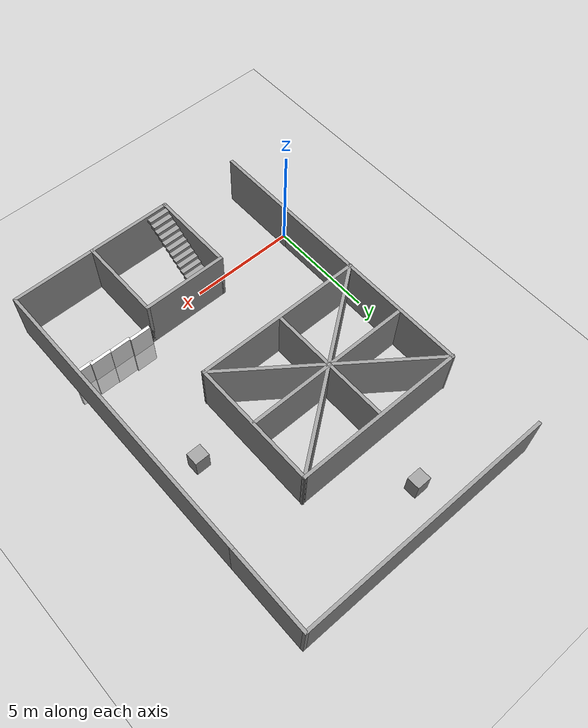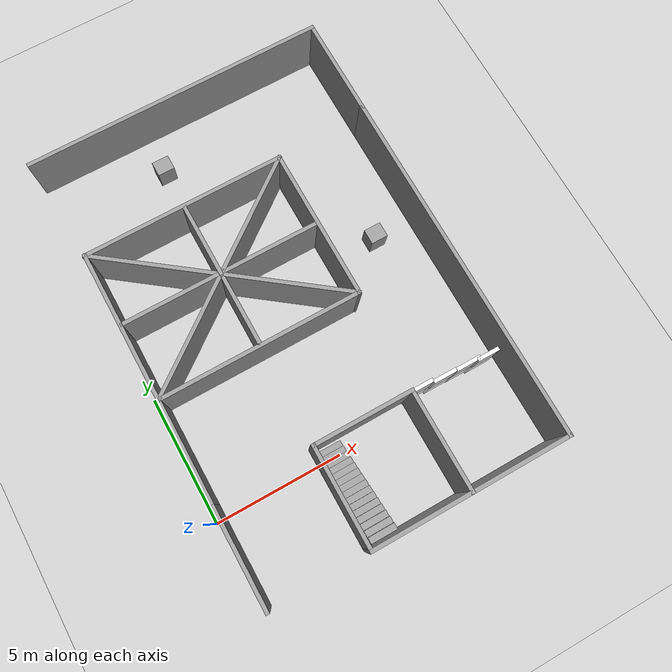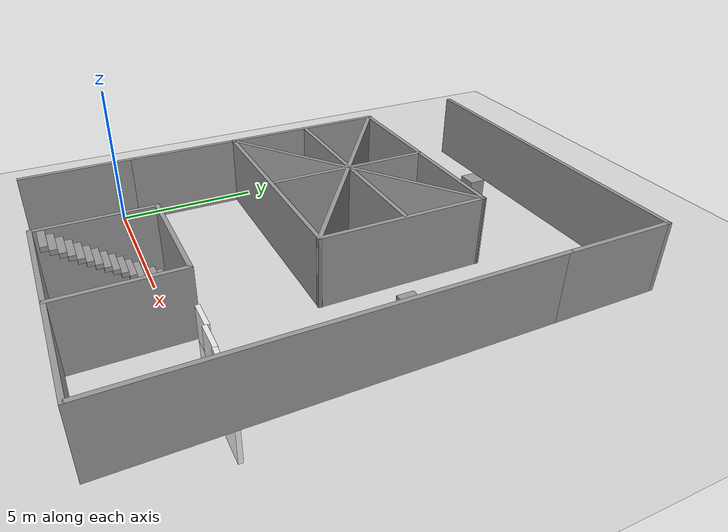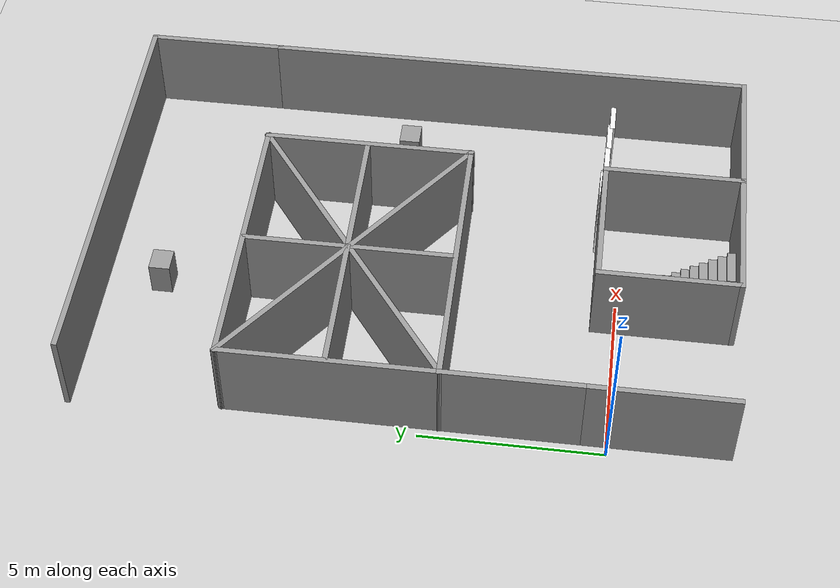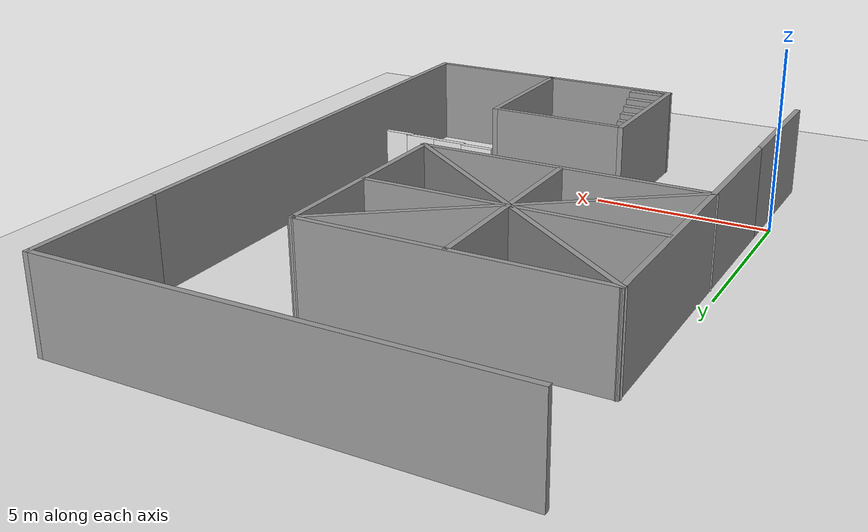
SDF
<sdf version="1.6">
 <world name="default">
  <light name="sun" type="directional">
   <pose>0 0 10 0 -0 0</pose>
   <diffuse>0.8 0.8 0.8 1</diffuse>
   <specular>0.1 0.1 0.1 1</specular>
   <attenuation>
    <range>1000</range>
    <constant>0.9</constant>
    <linear>0.01</linear>
    <quadratic>0.001</quadratic>
   </attenuation>
   <direction>-0.5 0.5 -1</direction>
  </light>
  <model name="ground_plane">
   <static>1</static>
   <link name="link">
    <collision name="collision">
     <geometry><plane><normal>0 0 1</normal><size>100 100</size></plane></geometry>
     <surface><friction><ode><mu>100</mu><mu2>50</mu2></ode></friction></surface>
    </collision>
    <visual name="visual">
     <cast_shadows>0</cast_shadows>
     <geometry><plane><normal>0 0 1</normal><size>100 100</size></plane></geometry>
     <material>
      <script><uri>file://media/materials/scripts/gazebo.material</uri><name>Gazebo/Grey</name></script>
     </material>
    </visual>
   </link>
  </model>
  <gravity>0 0 -9.8</gravity>
  <magnetic_field>6e-06 2.3e-05 -4.2e-05</magnetic_field>
  <atmosphere type="adiabatic"/>
  <physics name="default_physics" default="0" type="ode">
   <max_step_size>0.001</max_step_size>
   <real_time_factor>1</real_time_factor>
   <real_time_update_rate>1000</real_time_update_rate>
  </physics>
  <scene><ambient>0.4 0.4 0.4 1</ambient><background>0.7 0.7 0.7 1</background><shadows>1</shadows></scene>
  <spherical_coordinates>
   <surface_model>EARTH_WGS84</surface_model>
   <latitude_deg>0</latitude_deg>
   <longitude_deg>0</longitude_deg>
   <elevation>0</elevation>
   <heading_deg>0</heading_deg>
  </spherical_coordinates>
  <model name="maze_01">
   <pose>5.935 5.61 0 0 -0 0</pose>
   <link name="Stairs_0">
    <visual name="Stairs_0_Visual_0">
     <pose>-1.18202 -5.27807 0.083333 0 -0 0</pose>
     <geometry><box><size>1 0.233333 0.166667</size></box></geometry>
     <material>
      <script><uri>file://media/materials/scripts/gazebo.material</uri><name>Gazebo/Grey</name></script>
      <ambient>1 1 1 1</ambient>
     </material>
    </visual>
    <collision name="Stairs_0_Collision_0">
     <geometry><box><size>1 0.233333 0.166667</size></box></geometry>
     <pose>-1.18202 -5.27807 0.083333 0 -0 0</pose>
    </collision>
    <visual name="Stairs_0_Visual_1">
     <pose>-1.18202 -5.51141 0.25 0 -0 0</pose>
     <geometry><box><size>1 0.233333 0.166667</size></box></geometry>
     <material>
      <script><uri>file://media/materials/scripts/gazebo.material</uri><name>Gazebo/Grey</name></script>
      <ambient>1 1 1 1</ambient>
     </material>
    </visual>
    <collision name="Stairs_0_Collision_1">
     <geometry><box><size>1 0.233333 0.166667</size></box></geometry>
     <pose>-1.18202 -5.51141 0.25 0 -0 0</pose>
    </collision>
    <visual name="Stairs_0_Visual_2">
     <pose>-1.18202 -5.74474 0.416667 0 -0 0</pose>
     <geometry><box><size>1 0.233333 0.166667</size></box></geometry>
     <material>
      <script><uri>file://media/materials/scripts/gazebo.material</uri><name>Gazebo/Grey</name></script>
      <ambient>1 1 1 1</ambient>
     </material>
    </visual>
    <collision name="Stairs_0_Collision_2">
     <geometry><box><size>1 0.233333 0.166667</size></box></geometry>
     <pose>-1.18202 -5.74474 0.416667 0 -0 0</pose>
    </collision>
    <visual name="Stairs_0_Visual_3">
     <pose>-1.18202 -5.97807 0.583333 0 -0 0</pose>
     <geometry><box><size>1 0.233333 0.166667</size></box></geometry>
     <material>
      <script><uri>file://media/materials/scripts/gazebo.material</uri><name>Gazebo/Grey</name></script>
      <ambient>1 1 1 1</ambient>
     </material>
    </visual>
    <collision name="Stairs_0_Collision_3">
     <geometry><box><size>1 0.233333 0.166667</size></box></geometry>
     <pose>-1.18202 -5.97807 0.583333 0 -0 0</pose>
    </collision>
    <visual name="Stairs_0_Visual_4">
     <pose>-1.18202 -6.21141 0.75 0 -0 0</pose>
     <geometry><box><size>1 0.233333 0.166667</size></box></geometry>
     <material>
      <script><uri>file://media/materials/scripts/gazebo.material</uri><name>Gazebo/Grey</name></script>
      <ambient>1 1 1 1</ambient>
     </material>
    </visual>
    <collision name="Stairs_0_Collision_4">
     <geometry><box><size>1 0.233333 0.166667</size></box></geometry>
     <pose>-1.18202 -6.21141 0.75 0 -0 0</pose>
    </collision>
    <visual name="Stairs_0_Visual_5">
     <pose>-1.18202 -6.44474 0.916667 0 -0 0</pose>
     <geometry><box><size>1 0.233333 0.166667</size></box></geometry>
     <material>
      <script><uri>file://media/materials/scripts/gazebo.material</uri><name>Gazebo/Grey</name></script>
      <ambient>1 1 1 1</ambient>
     </material>
    </visual>
    <collision name="Stairs_0_Collision_5">
     <geometry><box><size>1 0.233333 0.166667</size></box></geometry>
     <pose>-1.18202 -6.44474 0.916667 0 -0 0</pose>
    </collision>
    <visual name="Stairs_0_Visual_6">
     <pose>-1.18202 -6.67807 1.08333 0 -0 0</pose>
     <geometry><box><size>1 0.233333 0.166667</size></box></geometry>
     <material>
      <script><uri>file://media/materials/scripts/gazebo.material</uri><name>Gazebo/Grey</name></script>
      <ambient>1 1 1 1</ambient>
     </material>
    </visual>
    <collision name="Stairs_0_Collision_6">
     <geometry><box><size>1 0.233333 0.166667</size></box></geometry>
     <pose>-1.18202 -6.67807 1.08333 0 -0 0</pose>
    </collision>
    <visual name="Stairs_0_Visual_7">
     <pose>-1.18202 -6.91141 1.25 0 -0 0</pose>
     <geometry><box><size>1 0.233333 0.166667</size></box></geometry>
     <material>
      <script><uri>file://media/materials/scripts/gazebo.material</uri><name>Gazebo/Grey</name></script>
      <ambient>1 1 1 1</ambient>
     </material>
    </visual>
    <collision name="Stairs_0_Collision_7">
     <geometry><box><size>1 0.233333 0.166667</size></box></geometry>
     <pose>-1.18202 -6.91141 1.25 0 -0 0</pose>
    </collision>
    <visual name="Stairs_0_Visual_8">
     <pose>-1.18202 -7.14474 1.41667 0 -0 0</pose>
     <geometry><box><size>1 0.233333 0.166667</size></box></geometry>
     <material>
      <script><uri>file://media/materials/scripts/gazebo.material</uri><name>Gazebo/Grey</name></script>
      <ambient>1 1 1 1</ambient>
     </material>
    </visual>
    <collision name="Stairs_0_Collision_8">
     <geometry><box><size>1 0.233333 0.166667</size></box></geometry>
     <pose>-1.18202 -7.14474 1.41667 0 -0 0</pose>
    </collision>
    <visual name="Stairs_0_Visual_9">
     <pose>-1.18202 -7.37807 1.58333 0 -0 0</pose>
     <geometry><box><size>1 0.233333 0.166667</size></box></geometry>
     <material>
      <script><uri>file://media/materials/scripts/gazebo.material</uri><name>Gazebo/Grey</name></script>
      <ambient>1 1 1 1</ambient>
     </material>
    </visual>
    <collision name="Stairs_0_Collision_9">
     <geometry><box><size>1 0.233333 0.166667</size></box></geometry>
     <pose>-1.18202 -7.37807 1.58333 0 -0 0</pose>
    </collision>
    <visual name="Stairs_0_Visual_10">
     <pose>-1.18202 -7.61141 1.75 0 -0 0</pose>
     <geometry><box><size>1 0.233333 0.166667</size></box></geometry>
     <material>
      <script><uri>file://media/materials/scripts/gazebo.material</uri><name>Gazebo/Grey</name></script>
      <ambient>1 1 1 1</ambient>
     </material>
    </visual>
    <collision name="Stairs_0_Collision_10">
     <geometry><box><size>1 0.233333 0.166667</size></box></geometry>
     <pose>-1.18202 -7.61141 1.75 0 -0 0</pose>
    </collision>
    <visual name="Stairs_0_Visual_11">
     <pose>-1.18202 -7.84474 1.91667 0 -0 0</pose>
     <geometry><box><size>1 0.233333 0.166667</size></box></geometry>
     <material>
      <script><uri>file://media/materials/scripts/gazebo.material</uri><name>Gazebo/Grey</name></script>
      <ambient>1 1 1 1</ambient>
     </material>
    </visual>
    <collision name="Stairs_0_Collision_11">
     <geometry><box><size>1 0.233333 0.166667</size></box></geometry>
     <pose>-1.18202 -7.84474 1.91667 0 -0 0</pose>
    </collision>
    <visual name="Stairs_0_Visual_12">
     <pose>-1.18202 -8.07807 2.08333 0 -0 0</pose>
     <geometry><box><size>1 0.233333 0.166667</size></box></geometry>
     <material>
      <script><uri>file://media/materials/scripts/gazebo.material</uri><name>Gazebo/Grey</name></script>
      <ambient>1 1 1 1</ambient>
     </material>
    </visual>
    <collision name="Stairs_0_Collision_12">
     <geometry><box><size>1 0.233333 0.166667</size></box></geometry>
     <pose>-1.18202 -8.07807 2.08333 0 -0 0</pose>
    </collision>
    <visual name="Stairs_0_Visual_13">
     <pose>-1.18202 -8.31141 2.25 0 -0 0</pose>
     <geometry><box><size>1 0.233333 0.166667</size></box></geometry>
     <material>
      <script><uri>file://media/materials/scripts/gazebo.material</uri><name>Gazebo/Grey</name></script>
      <ambient>1 1 1 1</ambient>
     </material>
    </visual>
    <collision name="Stairs_0_Collision_13">
     <geometry><box><size>1 0.233333 0.166667</size></box></geometry>
     <pose>-1.18202 -8.31141 2.25 0 -0 0</pose>
    </collision>
    <visual name="Stairs_0_Visual_14">
     <pose>-1.18202 -8.54474 2.41667 0 -0 0</pose>
     <geometry><box><size>1 0.233333 0.166667</size></box></geometry>
     <material>
      <script><uri>file://media/materials/scripts/gazebo.material</uri><name>Gazebo/Grey</name></script>
      <ambient>1 1 1 1</ambient>
     </material>
    </visual>
    <collision name="Stairs_0_Collision_14">
     <geometry><box><size>1 0.233333 0.166667</size></box></geometry>
     <pose>-1.18202 -8.54474 2.41667 0 -0 0</pose>
    </collision>
   </link>
   <link name="Wall_1">
    <collision name="Wall_1_Collision">
     <geometry><box><size>4 0.15 2.5</size></box></geometry>
     <pose>0 0 1.25 0 -0 0</pose>
    </collision>
    <visual name="Wall_1_Visual">
     <pose>0 0 1.25 0 -0 0</pose>
     <geometry><box><size>4 0.15 2.5</size></box></geometry>
     <material>
      <script><uri>file://media/materials/scripts/gazebo.material</uri><name>Gazebo/Grey</name></script>
      <ambient>1 1 1 1</ambient>
     </material>
    </visual>
    <pose>-5.625 -6.925 0 0 -0 1.5708</pose>
   </link>
   <link name="Wall_20">
    <collision name="Wall_20_Collision">
     <geometry><box><size>4 0.15 2.5</size></box></geometry>
     <pose>0 0 1.25 0 -0 0</pose>
    </collision>
    <visual name="Wall_20_Visual">
     <pose>0 0 1.25 0 -0 0</pose>
     <geometry><box><size>4 0.15 2.5</size></box></geometry>
     <material>
      <script><uri>file://media/materials/scripts/gazebo.material</uri><name>Gazebo/Grey</name></script>
      <ambient>1 1 1 1</ambient>
     </material>
    </visual>
    <pose>-5.625 -3.075 0 0 -0 1.5708</pose>
   </link>
   <link name="Wall_21">
    <collision name="Wall_21_Collision">
     <geometry><box><size>8 0.15 2.5</size></box></geometry>
     <pose>0 0 1.25 0 -0 0</pose>
    </collision>
    <visual name="Wall_21_Visual">
     <pose>0 0 1.25 0 -0 0</pose>
     <geometry><box><size>8 0.15 2.5</size></box></geometry>
     <material>
      <script><uri>file://media/materials/scripts/gazebo.material</uri><name>Gazebo/Grey</name></script>
      <ambient>1 1 1 1</ambient>
     </material>
    </visual>
    <pose>-1.7 -1.15 0 0 -0 0</pose>
   </link>
   <link name="Wall_22">
    <collision name="Wall_22_Collision">
     <geometry><box><size>6 0.15 2.5</size></box></geometry>
     <pose>0 0 1.25 0 -0 0</pose>
    </collision>
    <visual name="Wall_22_Visual">
     <pose>0 0 1.25 0 -0 0</pose>
     <geometry><box><size>6 0.15 2.5</size></box></geometry>
     <material>
      <script><uri>file://media/materials/scripts/gazebo.material</uri><name>Gazebo/Grey</name></script>
      <ambient>1 1 1 1</ambient>
     </material>
    </visual>
    <pose>2.225 1.775 0 0 -0 1.5708</pose>
   </link>
   <link name="Wall_24">
    <collision name="Wall_24_Collision">
     <geometry><box><size>4 0.15 2.5</size></box></geometry>
     <pose>0 0 1.25 0 -0 0</pose>
    </collision>
    <visual name="Wall_24_Visual">
     <pose>0 0 1.25 0 -0 0</pose>
     <geometry><box><size>4 0.15 2.5</size></box></geometry>
     <material>
      <script><uri>file://media/materials/scripts/gazebo.material</uri><name>Gazebo/Grey</name></script>
      <ambient>1 1 1 1</ambient>
     </material>
    </visual>
    <pose>0.15 -5 0 0 -0 0</pose>
   </link>
   <link name="Wall_25">
    <collision name="Wall_25_Collision">
     <geometry><box><size>4 0.15 2.5</size></box></geometry>
     <pose>0 0 1.25 0 -0 0</pose>
    </collision>
    <visual name="Wall_25_Visual">
     <pose>0 0 1.25 0 -0 0</pose>
     <geometry><box><size>4 0.15 2.5</size></box></geometry>
     <material>
      <script><uri>file://media/materials/scripts/gazebo.material</uri><name>Gazebo/Grey</name></script>
      <ambient>1 1 1 1</ambient>
     </material>
    </visual>
    <pose>2.075 -6.925 0 0 0 -1.5708</pose>
   </link>
   <link name="Wall_26">
    <collision name="Wall_26_Collision">
     <geometry><box><size>4 0.15 2.5</size></box></geometry>
     <pose>0 0 1.25 0 -0 0</pose>
    </collision>
    <visual name="Wall_26_Visual">
     <pose>0 0 1.25 0 -0 0</pose>
     <geometry><box><size>4 0.15 2.5</size></box></geometry>
     <material>
      <script><uri>file://media/materials/scripts/gazebo.material</uri><name>Gazebo/Grey</name></script>
      <ambient>1 1 1 1</ambient>
     </material>
    </visual>
    <pose>4 -8.85 0 0 -0 0</pose>
   </link>
   <link name="Wall_27">
    <collision name="Wall_27_Collision">
     <geometry><box><size>14 0.15 2.5</size></box></geometry>
     <pose>0 0 1.25 0 -0 0</pose>
    </collision>
    <visual name="Wall_27_Visual">
     <pose>0 0 1.25 0 -0 0</pose>
     <geometry><box><size>14 0.15 2.5</size></box></geometry>
     <material>
      <script><uri>file://media/materials/scripts/gazebo.material</uri><name>Gazebo/Grey</name></script>
      <ambient>1 1 1 1</ambient>
     </material>
    </visual>
    <pose>5.925 -1.925 0 0 -0 1.5708</pose>
   </link>
   <link name="Wall_28">
    <collision name="Wall_28_Collision">
     <geometry><box><size>4 0.15 2.5</size></box></geometry>
     <pose>0 0 1.25 0 -0 0</pose>
    </collision>
    <visual name="Wall_28_Visual">
     <pose>0 0 1.25 0 -0 0</pose>
     <geometry><box><size>4 0.15 2.5</size></box></geometry>
     <material>
      <script><uri>file://media/materials/scripts/gazebo.material</uri><name>Gazebo/Grey</name></script>
      <ambient>1 1 1 1</ambient>
     </material>
    </visual>
    <pose>5.925 6.925 0 0 -0 1.5708</pose>
   </link>
   <link name="Wall_29">
    <collision name="Wall_29_Collision">
     <geometry><box><size>12 0.15 2.5</size></box></geometry>
     <pose>0 0 1.25 0 -0 0</pose>
    </collision>
    <visual name="Wall_29_Visual">
     <pose>0 0 1.25 0 -0 0</pose>
     <geometry><box><size>12 0.15 2.5</size></box></geometry>
     <material>
      <script><uri>file://media/materials/scripts/gazebo.material</uri><name>Gazebo/Grey</name></script>
      <ambient>1 1 1 1</ambient>
     </material>
    </visual>
    <pose>0 8.85 0 0 -0 3.14159</pose>
   </link>
   <link name="Wall_33">
    <collision name="Wall_33_Collision">
     <geometry><box><size>8 0.15 2.5</size></box></geometry>
     <pose>0 0 1.25 0 -0 0</pose>
    </collision>
    <visual name="Wall_33_Visual">
     <pose>0 0 1.25 0 -0 0</pose>
     <geometry><box><size>8 0.15 2.5</size></box></geometry>
     <material>
      <script><uri>file://media/materials/scripts/gazebo.material</uri><name>Gazebo/Grey</name></script>
      <ambient>1 1 1 1</ambient>
     </material>
    </visual>
    <pose>-1.7 4.7 0 0 -0 3.14159</pose>
   </link>
   <link name="Wall_34">
    <collision name="Wall_34_Collision">
     <geometry><box><size>6 0.15 2.5</size></box></geometry>
     <pose>0 0 1.25 0 -0 0</pose>
    </collision>
    <visual name="Wall_34_Visual">
     <pose>0 0 1.25 0 -0 0</pose>
     <geometry><box><size>6 0.15 2.5</size></box></geometry>
     <material>
      <script><uri>file://media/materials/scripts/gazebo.material</uri><name>Gazebo/Grey</name></script>
      <ambient>1 1 1 1</ambient>
     </material>
    </visual>
    <pose>-5.625 1.775 0 0 0 -1.5708</pose>
   </link>
   <link name="Wall_35">
    <collision name="Wall_35_Collision">
     <geometry><box><size>9.94005 0.15 2.5</size></box></geometry>
     <pose>0 0 1.25 0 -0 0</pose>
    </collision>
    <visual name="Wall_35_Visual">
     <pose>0 0 1.25 0 -0 0</pose>
     <geometry><box><size>9.94005 0.15 2.5</size></box></geometry>
     <material>
      <script><uri>file://media/materials/scripts/gazebo.material</uri><name>Gazebo/Grey</name></script>
      <ambient>1 1 1 1</ambient>
     </material>
    </visual>
    <pose>-1.7 1.775 0 0 -0 0.640437</pose>
   </link>
   <link name="Wall_37">
    <collision name="Wall_37_Collision">
     <geometry><box><size>9.94005 0.15 2.5</size></box></geometry>
     <pose>0 0 1.25 0 -0 0</pose>
    </collision>
    <visual name="Wall_37_Visual">
     <pose>0 0 1.25 0 -0 0</pose>
     <geometry><box><size>9.94005 0.15 2.5</size></box></geometry>
     <material>
      <script><uri>file://media/materials/scripts/gazebo.material</uri><name>Gazebo/Grey</name></script>
      <ambient>1 1 1 1</ambient>
     </material>
    </visual>
    <pose>-1.7 1.775 0 0 0 -0.640437</pose>
   </link>
   <link name="Wall_39">
    <collision name="Wall_39_Collision">
     <geometry><box><size>4 0.15 2.5</size></box></geometry>
     <pose>0 0 1.25 0 -0 0</pose>
    </collision>
    <visual name="Wall_39_Visual">
     <pose>0 0 1.25 0 -0 0</pose>
     <geometry><box><size>4 0.15 2.5</size></box></geometry>
     <material>
      <script><uri>file://media/materials/scripts/gazebo.material</uri><name>Gazebo/Grey</name></script>
      <ambient>1 1 1 1</ambient>
     </material>
    </visual>
    <pose>-3.62181 1.81155 0 0 -0 3.14159</pose>
   </link>
   <link name="Wall_4">
    <collision name="Wall_4_Collision">
     <geometry><box><size>4 0.15 2.5</size></box></geometry>
     <pose>0 0 1.25 0 -0 0</pose>
    </collision>
    <visual name="Wall_4_Visual">
     <pose>0 0 1.25 0 -0 0</pose>
     <geometry><box><size>4 0.15 2.5</size></box></geometry>
     <material>
      <script><uri>file://media/materials/scripts/gazebo.material</uri><name>Gazebo/Grey</name></script>
      <ambient>1 1 1 1</ambient>
     </material>
    </visual>
    <pose>-1.775 -6.925 0 0 -0 1.5708</pose>
   </link>
   <link name="Wall_41">
    <collision name="Wall_41_Collision">
     <geometry><box><size>3 0.15 2.5</size></box></geometry>
     <pose>0 0 1.25 0 -0 0</pose>
    </collision>
    <visual name="Wall_41_Visual">
     <pose>0 0 1.25 0 -0 0</pose>
     <geometry><box><size>3 0.15 2.5</size></box></geometry>
     <material>
      <script><uri>file://media/materials/scripts/gazebo.material</uri><name>Gazebo/Grey</name></script>
      <ambient>1 1 1 1</ambient>
     </material>
    </visual>
    <pose>-1.69681 3.23655 0 0 -0 1.5708</pose>
   </link>
   <link name="Wall_43">
    <collision name="Wall_43_Collision">
     <geometry><box><size>4 0.15 2.5</size></box></geometry>
     <pose>0 0 1.25 0 -0 0</pose>
    </collision>
    <visual name="Wall_43_Visual">
     <pose>0 0 1.25 0 -0 0</pose>
     <geometry><box><size>4 0.15 2.5</size></box></geometry>
     <material>
      <script><uri>file://media/materials/scripts/gazebo.material</uri><name>Gazebo/Grey</name></script>
      <ambient>1 1 1 1</ambient>
     </material>
    </visual>
    <pose>0.228187 1.81155 0 0 -0 0</pose>
   </link>
   <link name="Wall_45">
    <collision name="Wall_45_Collision">
     <geometry><box><size>3 0.15 2.5</size></box></geometry>
     <pose>0 0 1.25 0 -0 0</pose>
    </collision>
    <visual name="Wall_45_Visual">
     <pose>0 0 1.25 0 -0 0</pose>
     <geometry><box><size>3 0.15 2.5</size></box></geometry>
     <material>
      <script><uri>file://media/materials/scripts/gazebo.material</uri><name>Gazebo/Grey</name></script>
      <ambient>1 1 1 1</ambient>
     </material>
    </visual>
    <pose>-1.69681 0.386547 0 0 0 -1.5708</pose>
   </link>
   <link name="Wall_47">
    <collision name="Wall_47_Collision">
     <geometry><box><size>4 0.15 2.5</size></box></geometry>
     <pose>0 0 1.25 0 -0 0</pose>
    </collision>
    <visual name="Wall_47_Visual">
     <pose>0 0 1.25 0 -0 0</pose>
     <geometry><box><size>4 0.15 2.5</size></box></geometry>
     <material>
      <script><uri>file://media/materials/scripts/gazebo.material</uri><name>Gazebo/Grey</name></script>
      <ambient>1 1 1 1</ambient>
     </material>
    </visual>
    <pose>0.15 -8.85 0 0 -0 0</pose>
   </link>
   <static>1</static>
  </model>
  <model name="unit_box_0_0_0">
   <link name="link">
    <inertial>
     <mass>0.396603</mass>
     <inertia>
      <ixx>0.0445957</ixx>
      <ixy>0</ixy>
      <ixz>0</ixz>
      <iyy>0.0479321</iyy>
      <iyz>0</iyz>
      <izz>0.0264272</izz>
     </inertia>
    </inertial>
    <visual name="visual">
     <geometry><box><size>0.671024 0.59104 1</size></box></geometry>
     <material>
      <script><name>Gazebo/Grey</name><uri>file://media/materials/scripts/gazebo.material</uri></script>
      <ambient>0.3 0.3 0.3 1</ambient>
      <diffuse>0.7 0.7 0.7 1</diffuse>
      <specular>0.01 0.01 0.01 1</specular>
      <emissive>0 0 0 1</emissive>
     </material>
    </visual>
    <collision name="collision">
     <geometry><box><size>0.671024 0.59104 1</size></box></geometry>
     <surface>
      <friction>
       <ode><mu>1</mu><mu2>1</mu2><fdir1>0 0 0</fdir1><slip1>0</slip1><slip2>0</slip2></ode>
       <torsional>
        <coefficient>1</coefficient>
        <patch_radius>0</patch_radius>
        <surface_radius>0</surface_radius>
        <use_patch_radius>1</use_patch_radius>
        <ode><slip>0</slip></ode>
       </torsional>
      </friction>
      <bounce><restitution_coefficient>0</restitution_coefficient><threshold>1e+06</threshold></bounce>
      <contact>
       <collide_without_contact>0</collide_without_contact>
       <collide_without_contact_bitmask>1</collide_without_contact_bitmask>
       <collide_bitmask>1</collide_bitmask>
       <ode>
        <soft_cfm>0</soft_cfm>
        <soft_erp>0.2</soft_erp>
        <kp>1e+13</kp>
        <kd>1</kd>
        <max_vel>0.01</max_vel>
        <min_depth>0</min_depth>
       </ode>
       <bullet>
        <split_impulse>1</split_impulse>
        <split_impulse_penetration_threshold>-0.01</split_impulse_penetration_threshold>
        <soft_cfm>0</soft_cfm>
        <soft_erp>0.2</soft_erp>
        <kp>1e+13</kp>
        <kd>1</kd>
       </bullet>
      </contact>
     </surface>
    </collision>
   </link>
   <static>0</static>
   <pose>10.1855 6.45585 0.5 0 -0 0.000139</pose>
  </model>
  <model name="unit_box_0_0_0_clone">
   <link name="link">
    <inertial>
     <mass>0.396603</mass>
     <inertia>
      <ixx>0.0445957</ixx>
      <ixy>0</ixy>
      <ixz>0</ixz>
      <iyy>0.0479321</iyy>
      <iyz>0</iyz>
      <izz>0.0264272</izz>
     </inertia>
    </inertial>
    <visual name="visual">
     <geometry><box><size>0.671024 0.59104 1</size></box></geometry>
     <material>
      <script><name>Gazebo/Grey</name><uri>file://media/materials/scripts/gazebo.material</uri></script>
      <ambient>0.3 0.3 0.3 1</ambient>
      <diffuse>0.7 0.7 0.7 1</diffuse>
      <specular>0.01 0.01 0.01 1</specular>
      <emissive>0 0 0 1</emissive>
     </material>
    </visual>
    <collision name="collision">
     <geometry><box><size>0.671024 0.59104 1</size></box></geometry>
     <surface>
      <friction>
       <ode><mu>1</mu><mu2>1</mu2><fdir1>0 0 0</fdir1><slip1>0</slip1><slip2>0</slip2></ode>
       <torsional>
        <coefficient>1</coefficient>
        <patch_radius>0</patch_radius>
        <surface_radius>0</surface_radius>
        <use_patch_radius>1</use_patch_radius>
        <ode><slip>0</slip></ode>
       </torsional>
      </friction>
      <bounce><restitution_coefficient>0</restitution_coefficient><threshold>1e+06</threshold></bounce>
      <contact>
       <collide_without_contact>0</collide_without_contact>
       <collide_without_contact_bitmask>1</collide_without_contact_bitmask>
       <collide_bitmask>1</collide_bitmask>
       <ode>
        <soft_cfm>0</soft_cfm>
        <soft_erp>0.2</soft_erp>
        <kp>1e+13</kp>
        <kd>1</kd>
        <max_vel>0.01</max_vel>
        <min_depth>0</min_depth>
       </ode>
       <bullet>
        <split_impulse>1</split_impulse>
        <split_impulse_penetration_threshold>-0.01</split_impulse_penetration_threshold>
        <soft_cfm>0</soft_cfm>
        <soft_erp>0.2</soft_erp>
        <kp>1e+13</kp>
        <kd>1</kd>
       </bullet>
      </contact>
     </surface>
    </collision>
   </link>
   <static>0</static>
   <pose>4.40059 12.776 0.5 0 -0 0.000139</pose>
  </model>
  <model name="wall">
   <link name="Wall_10">
    <inertial>
     <mass>1</mass>
     <inertia><ixx>1</ixx><ixy>0</ixy><ixz>0</ixz><iyy>1</iyy><iyz>0</iyz><izz>1</izz></inertia>
    </inertial>
    <visual name="Wall_10_Visual_0">
     <geometry><box><size>1 0.15 2.5</size></box></geometry>
     <material>
      <script>
       <uri>model://wall/materials/scripts</uri>
       <uri>model://wall/materials/textures</uri>
       <name>wall_white</name>
      </script>
      <shader type="pixel"><normal_map>__default__</normal_map></shader>
      <ambient>1 1 1 1</ambient>
      <diffuse>1 1 1 1</diffuse>
      <specular>0 0 0 1</specular>
      <emissive>0 0 0 1</emissive>
     </material>
     <meta><layer>0</layer></meta>
    </visual>
    <collision name="Wall_10_Collision_0">
     <geometry><box><size>1 0.15 2.5</size></box></geometry>
     <surface>
      <friction>
       <ode><mu>1</mu><mu2>1</mu2><fdir1>0 0 0</fdir1><slip1>0</slip1><slip2>0</slip2></ode>
       <torsional>
        <coefficient>1</coefficient>
        <patch_radius>0</patch_radius>
        <surface_radius>0</surface_radius>
        <use_patch_radius>1</use_patch_radius>
        <ode><slip>0</slip></ode>
       </torsional>
      </friction>
      <bounce><restitution_coefficient>0</restitution_coefficient><threshold>1e+06</threshold></bounce>
      <contact>
       <collide_without_contact>0</collide_without_contact>
       <collide_without_contact_bitmask>1</collide_without_contact_bitmask>
       <collide_bitmask>1</collide_bitmask>
       <ode>
        <soft_cfm>0</soft_cfm>
        <soft_erp>0.2</soft_erp>
        <kp>1e+13</kp>
        <kd>1</kd>
        <max_vel>0.01</max_vel>
        <min_depth>0</min_depth>
       </ode>
       <bullet>
        <split_impulse>1</split_impulse>
        <split_impulse_penetration_threshold>-0.01</split_impulse_penetration_threshold>
        <soft_cfm>0</soft_cfm>
        <soft_erp>0.2</soft_erp>
        <kp>1e+13</kp>
        <kd>1</kd>
       </bullet>
      </contact>
     </surface>
    </collision>
   </link>
   <static>1</static>
   <pose>11.3903 0.48664 0 0 -0 0</pose>
  </model>
  <model name="wall_0">
   <link name="Wall_10">
    <inertial>
     <mass>1</mass>
     <inertia><ixx>1</ixx><ixy>0</ixy><ixz>0</ixz><iyy>1</iyy><iyz>0</iyz><izz>1</izz></inertia>
    </inertial>
    <visual name="Wall_10_Visual_0">
     <geometry><box><size>1 0.15 2.5</size></box></geometry>
     <material>
      <script>
       <uri>model://wall/materials/scripts</uri>
       <uri>model://wall/materials/textures</uri>
       <name>wall_white</name>
      </script>
      <shader type="pixel"><normal_map>__default__</normal_map></shader>
      <ambient>1 1 1 1</ambient>
      <diffuse>1 1 1 1</diffuse>
      <specular>0 0 0 1</specular>
      <emissive>0 0 0 1</emissive>
     </material>
     <meta><layer>0</layer></meta>
    </visual>
    <collision name="Wall_10_Collision_0">
     <geometry><box><size>1 0.15 2.5</size></box></geometry>
     <surface>
      <friction>
       <ode><mu>1</mu><mu2>1</mu2><fdir1>0 0 0</fdir1><slip1>0</slip1><slip2>0</slip2></ode>
       <torsional>
        <coefficient>1</coefficient>
        <patch_radius>0</patch_radius>
        <surface_radius>0</surface_radius>
        <use_patch_radius>1</use_patch_radius>
        <ode><slip>0</slip></ode>
       </torsional>
      </friction>
      <bounce><restitution_coefficient>0</restitution_coefficient><threshold>1e+06</threshold></bounce>
      <contact>
       <collide_without_contact>0</collide_without_contact>
       <collide_without_contact_bitmask>1</collide_without_contact_bitmask>
       <collide_bitmask>1</collide_bitmask>
       <ode>
        <soft_cfm>0</soft_cfm>
        <soft_erp>0.2</soft_erp>
        <kp>1e+13</kp>
        <kd>1</kd>
        <max_vel>0.01</max_vel>
        <min_depth>0</min_depth>
       </ode>
       <bullet>
        <split_impulse>1</split_impulse>
        <split_impulse_penetration_threshold>-0.01</split_impulse_penetration_threshold>
        <soft_cfm>0</soft_cfm>
        <soft_erp>0.2</soft_erp>
        <kp>1e+13</kp>
        <kd>1</kd>
       </bullet>
      </contact>
     </surface>
    </collision>
   </link>
   <static>1</static>
   <pose>10.5392 0.54823 0 0 -0 0</pose>
  </model>
  <model name="wall_1">
   <link name="Wall_10">
    <inertial>
     <mass>1</mass>
     <inertia><ixx>1</ixx><ixy>0</ixy><ixz>0</ixz><iyy>1</iyy><iyz>0</iyz><izz>1</izz></inertia>
    </inertial>
    <visual name="Wall_10_Visual_0">
     <geometry><box><size>1 0.15 2.5</size></box></geometry>
     <material>
      <script>
       <uri>model://wall/materials/scripts</uri>
       <uri>model://wall/materials/textures</uri>
       <name>wall_white</name>
      </script>
      <shader type="pixel"><normal_map>__default__</normal_map></shader>
      <ambient>1 1 1 1</ambient>
      <diffuse>1 1 1 1</diffuse>
      <specular>0 0 0 1</specular>
      <emissive>0 0 0 1</emissive>
     </material>
     <meta><layer>0</layer></meta>
    </visual>
    <collision name="Wall_10_Collision_0">
     <geometry><box><size>1 0.15 2.5</size></box></geometry>
     <surface>
      <friction>
       <ode><mu>1</mu><mu2>1</mu2><fdir1>0 0 0</fdir1><slip1>0</slip1><slip2>0</slip2></ode>
       <torsional>
        <coefficient>1</coefficient>
        <patch_radius>0</patch_radius>
        <surface_radius>0</surface_radius>
        <use_patch_radius>1</use_patch_radius>
        <ode><slip>0</slip></ode>
       </torsional>
      </friction>
      <bounce><restitution_coefficient>0</restitution_coefficient><threshold>1e+06</threshold></bounce>
      <contact>
       <collide_without_contact>0</collide_without_contact>
       <collide_without_contact_bitmask>1</collide_without_contact_bitmask>
       <collide_bitmask>1</collide_bitmask>
       <ode>
        <soft_cfm>0</soft_cfm>
        <soft_erp>0.2</soft_erp>
        <kp>1e+13</kp>
        <kd>1</kd>
        <max_vel>0.01</max_vel>
        <min_depth>0</min_depth>
       </ode>
       <bullet>
        <split_impulse>1</split_impulse>
        <split_impulse_penetration_threshold>-0.01</split_impulse_penetration_threshold>
        <soft_cfm>0</soft_cfm>
        <soft_erp>0.2</soft_erp>
        <kp>1e+13</kp>
        <kd>1</kd>
       </bullet>
      </contact>
     </surface>
    </collision>
   </link>
   <static>1</static>
   <pose>9.58953 0.570821 0 0 -0 0</pose>
  </model>
  <model name="wall_2">
   <link name="Wall_10">
    <inertial>
     <mass>1</mass>
     <inertia><ixx>1</ixx><ixy>0</ixy><ixz>0</ixz><iyy>1</iyy><iyz>0</iyz><izz>1</izz></inertia>
    </inertial>
    <visual name="Wall_10_Visual_0">
     <geometry><box><size>1 0.15 2.5</size></box></geometry>
     <material>
      <script>
       <uri>model://wall/materials/scripts</uri>
       <uri>model://wall/materials/textures</uri>
       <name>wall_white</name>
      </script>
      <shader type="pixel"><normal_map>__default__</normal_map></shader>
      <ambient>1 1 1 1</ambient>
      <diffuse>1 1 1 1</diffuse>
      <specular>0 0 0 1</specular>
      <emissive>0 0 0 1</emissive>
     </material>
     <meta><layer>0</layer></meta>
    </visual>
    <collision name="Wall_10_Collision_0">
     <geometry><box><size>1 0.15 2.5</size></box></geometry>
     <surface>
      <friction>
       <ode><mu>1</mu><mu2>1</mu2><fdir1>0 0 0</fdir1><slip1>0</slip1><slip2>0</slip2></ode>
       <torsional>
        <coefficient>1</coefficient>
        <patch_radius>0</patch_radius>
        <surface_radius>0</surface_radius>
        <use_patch_radius>1</use_patch_radius>
        <ode><slip>0</slip></ode>
       </torsional>
      </friction>
      <bounce><restitution_coefficient>0</restitution_coefficient><threshold>1e+06</threshold></bounce>
      <contact>
       <collide_without_contact>0</collide_without_contact>
       <collide_without_contact_bitmask>1</collide_without_contact_bitmask>
       <collide_bitmask>1</collide_bitmask>
       <ode>
        <soft_cfm>0</soft_cfm>
        <soft_erp>0.2</soft_erp>
        <kp>1e+13</kp>
        <kd>1</kd>
        <max_vel>0.01</max_vel>
        <min_depth>0</min_depth>
       </ode>
       <bullet>
        <split_impulse>1</split_impulse>
        <split_impulse_penetration_threshold>-0.01</split_impulse_penetration_threshold>
        <soft_cfm>0</soft_cfm>
        <soft_erp>0.2</soft_erp>
        <kp>1e+13</kp>
        <kd>1</kd>
       </bullet>
      </contact>
     </surface>
    </collision>
   </link>
   <static>1</static>
   <pose>8.62423 0.649011 0 0 -0 0</pose>
  </model>
 </world>
</sdf>
